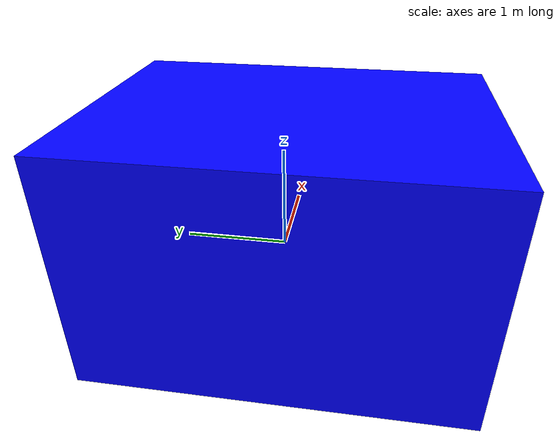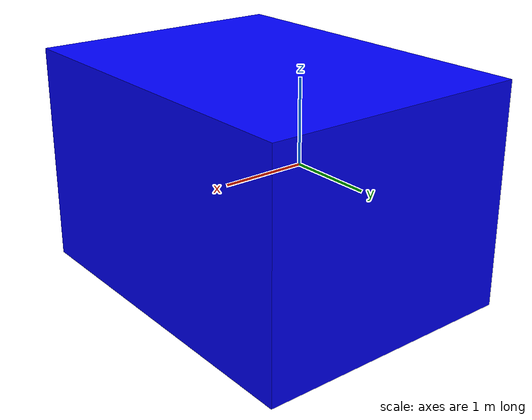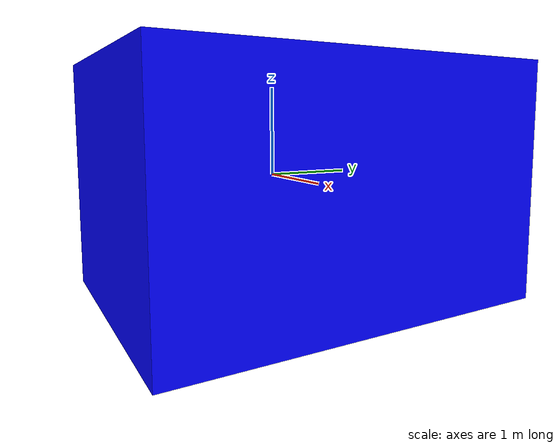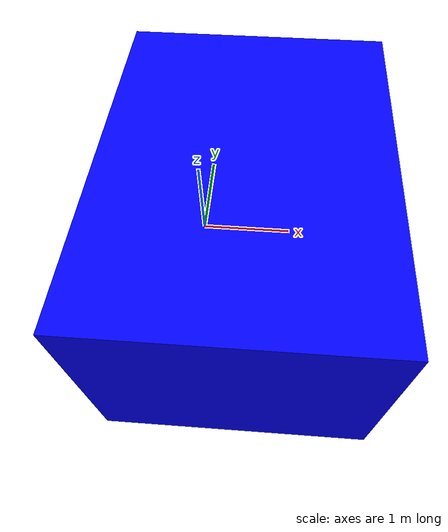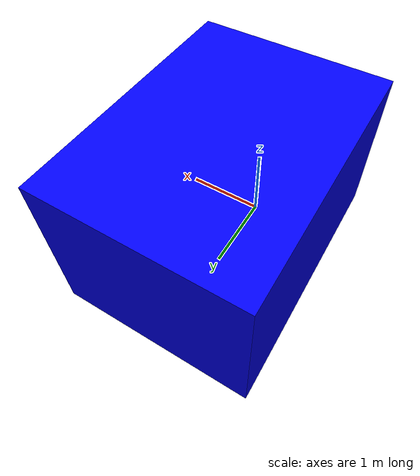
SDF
<?xml version="1.0" ?>
<sdf version="1.8">
    <model name='vehicle' canonical_link='chassis'>
        <pose>0 0 0 0 0 0</pose>   <!--the pose is relative to the world by default-->

        <link name='chassis'>
            <pose relative_to='__model__'>0.5 0 0.0 0 0 0</pose>
            <inertial> <!--inertial properties of the link mass, inertia matix-->
                <mass>1.14395</mass>
                <inertia>
                    <ixx>0.126164</ixx>
                    <ixy>0</ixy>
                    <ixz>0</ixz>
                    <iyy>0.416519</iyy>
                    <iyz>0</iyz>
                    <izz>0.481014</izz>
                </inertia>
            </inertial>
            <visual name='visual'>
                <geometry>
                    <box>
                        <size>3.0 4.0 2.5</size> <!--question: this size is in meter-->
                    </box>
                </geometry>
                <!--let's add color to our link-->
                <material>
                    <ambient>0.0 0.0 1.0 1</ambient>
                    <diffuse>0.0 0.0 1.0 1</diffuse>
                    <specular>0.0 0.0 1.0 1</specular>
                </material>
            </visual>
            <collision name='collision'> <!--todo: describe why we need the collision-->
                <geometry>
                    <box>
                        <size>3.0 4.0 2.5</size>
                    </box>
                </geometry>
            </collision>
        </link>
    </model>
</sdf>
